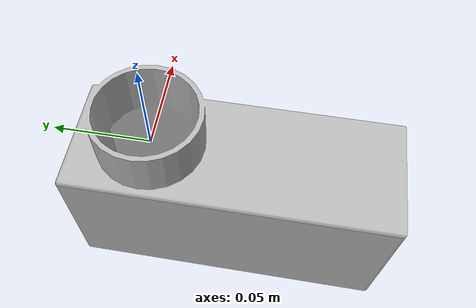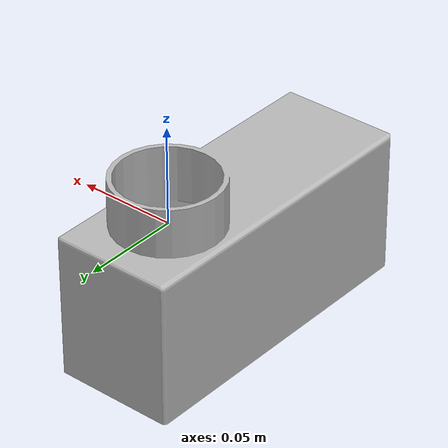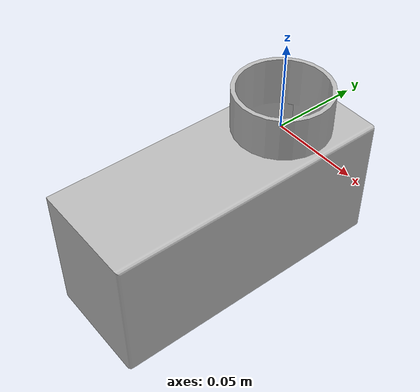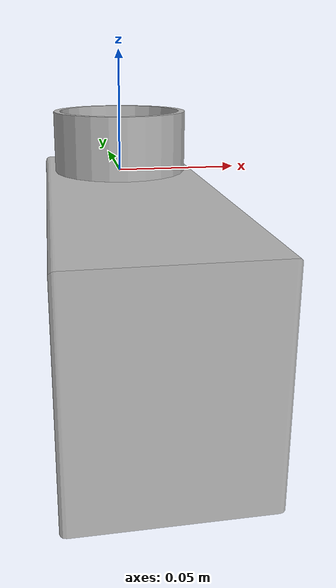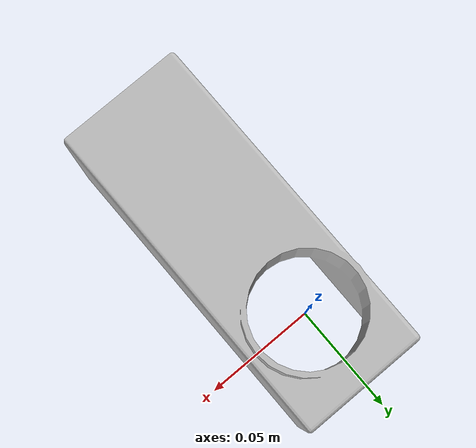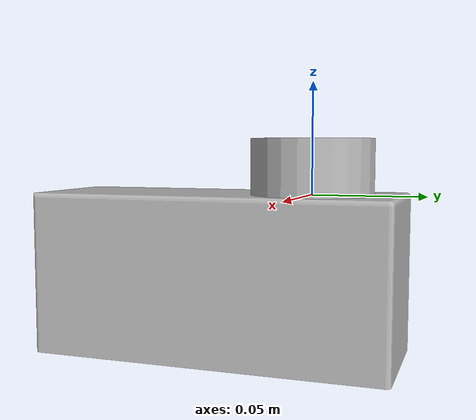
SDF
<sdf version='1.6'>
  <model name='peng'>
    <link name='peng'>
      <pose frame=''>0 0 0 0 -0 0</pose>
      <inertial>
        <pose frame=''>0 -0.041907 -0.028887 0 -0 0</pose>
        <mass>0.1684</mass>
        <inertia>
          <ixx>0.00062222</ixx>
          <ixy>9.8906e-10</ixy>
          <ixz>2.4666e-10</ixz>
          <iyy>0.00021389</iyy>
          <iyz>9.0339e-06</iyz>
          <izz>0.00061855</izz>
        </inertia>
      </inertial>
      <collision name='peng_collision'>
        <pose frame=''>0 0 0 1.5708 -0 0</pose>
        <geometry>
          <mesh>
            <scale>1 1 1</scale>
            <uri>model://peng/meshes/peng.STL</uri>
          </mesh>
        </geometry>
      </collision>
      <visual name='peng_visual'>
        <pose frame=''>0 0 0 1.5708 -0 0</pose>
        <geometry>
          <mesh>
            <scale>1 1 1</scale>
            <uri>model://peng/meshes/peng.STL</uri>
          </mesh>
        </geometry>
      </visual>
    </link>
  </model>
</sdf>
